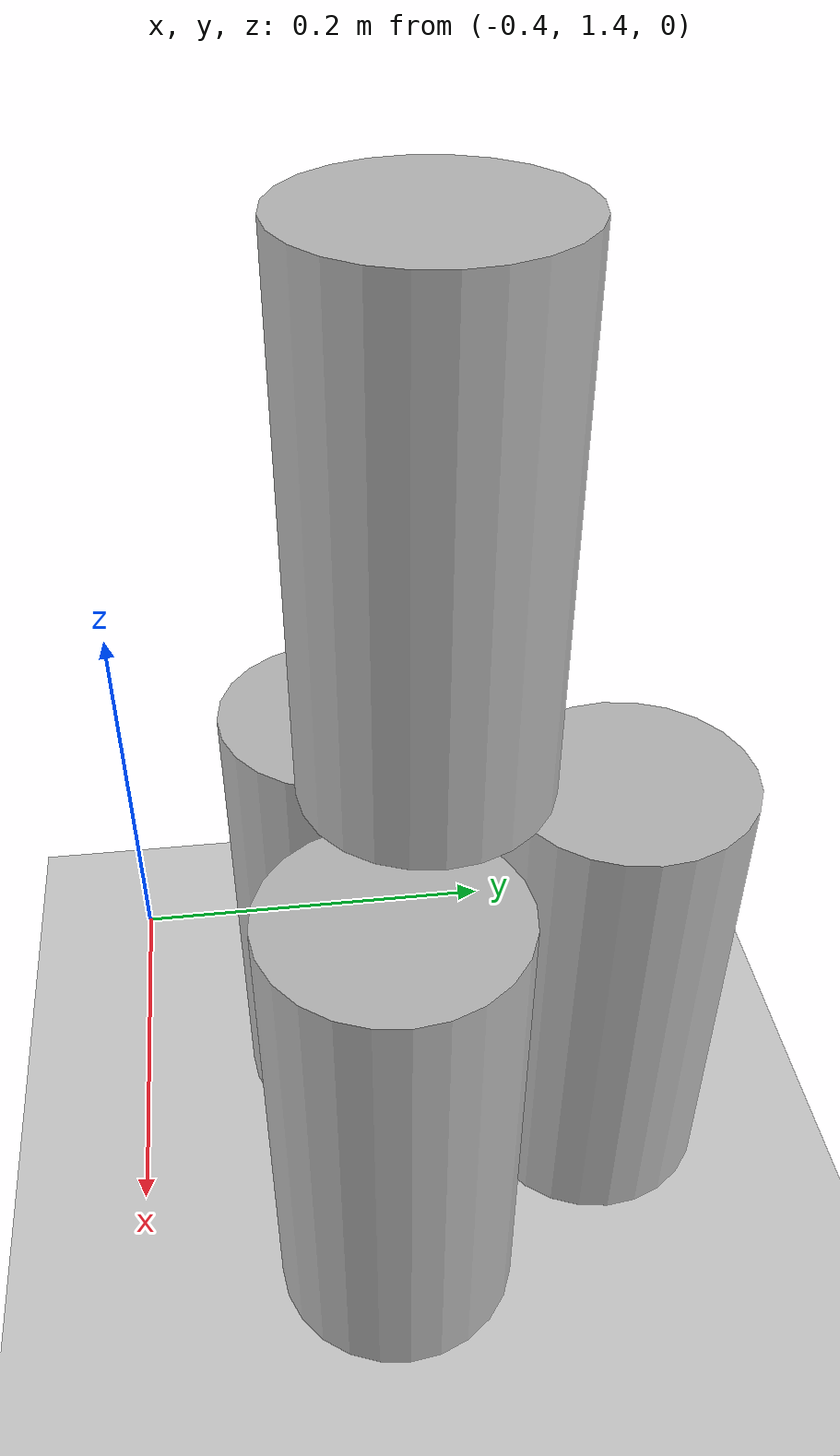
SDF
<sdf version="1.6">
 <world name="default">
  <light name="sun" type="directional">
   <pose>0 0 10 0 -0 0</pose>
   <diffuse>0.8 0.8 0.8 1</diffuse>
   <specular>0.2 0.2 0.2 1</specular>
   <attenuation>
    <range>1000</range>
    <constant>0.9</constant>
    <linear>0.01</linear>
    <quadratic>0.001</quadratic>
   </attenuation>
   <direction>-0.5 0.1 -0.9</direction>
  </light>
  <model name="ground_plane">
   <static>1</static>
   <link name="link">
    <collision name="collision">
     <geometry><plane><normal>0 0 1</normal><size>100 100</size></plane></geometry>
     <surface>
      <contact><collide_bitmask>65535</collide_bitmask></contact>
      <friction><ode><mu>100</mu><mu2>50</mu2></ode></friction>
     </surface>
    </collision>
    <visual name="visual">
     <cast_shadows>0</cast_shadows>
     <geometry><plane><normal>0 0 1</normal><size>100 100</size></plane></geometry>
     <material>
      <script><uri>file://media/materials/scripts/gazebo.material</uri><name>Gazebo/Grey</name></script>
     </material>
    </visual>
   </link>
  </model>
  <gravity>0 0 -9.8</gravity>
  <magnetic_field>6e-06 2.3e-05 -4.2e-05</magnetic_field>
  <atmosphere type="adiabatic"/>
  <physics name="default_physics" default="0" type="ode">
   <max_step_size>0.001</max_step_size>
   <real_time_factor>1</real_time_factor>
   <real_time_update_rate>1000</real_time_update_rate>
  </physics>
  <scene><ambient>0.4 0.4 0.4 1</ambient><background>0.7 0.7 0.7 1</background><shadows>1</shadows></scene>
  <audio><device>default</device></audio>
  <spherical_coordinates>
   <surface_model>EARTH_WGS84</surface_model>
   <latitude_deg>0</latitude_deg>
   <longitude_deg>0</longitude_deg>
   <elevation>0</elevation>
   <heading_deg>0</heading_deg>
  </spherical_coordinates>
  <model name="beer">
   <link name="link">
    <pose>0 0 0.115 0 -0 0</pose>
    <inertial>
     <mass>0.39</mass>
     <inertia><ixx>0.00058</ixx><ixy>0</ixy><ixz>0</ixz><iyy>0.00058</iyy><iyz>0</iyz><izz>0.00019</izz></inertia>
    </inertial>
    <collision name="collision">
     <geometry><cylinder><radius>0.055</radius><length>0.23</length></cylinder></geometry>
    </collision>
    <visual name="visual">
     <geometry><cylinder><radius>0.055</radius><length>0.23</length></cylinder></geometry>
     <material>
      <script>
       <uri>model://beer/materials/scripts</uri>
       <uri>model://beer/materials/textures</uri>
       <name>Beer/Diffuse</name>
      </script>
     </material>
    </visual>
   </link>
   <pose>-0.221468 1.6296 -1e-06 -1.6e-05 -7e-06 -0.008814</pose>
  </model>
  <model name="beer_0">
   <link name="link">
    <pose>0 0 0.115 0 -0 0</pose>
    <inertial>
     <mass>0.39</mass>
     <inertia><ixx>0.00058</ixx><ixy>0</ixy><ixz>0</ixz><iyy>0.00058</iyy><iyz>0</iyz><izz>0.00019</izz></inertia>
    </inertial>
    <collision name="collision">
     <geometry><cylinder><radius>0.055</radius><length>0.23</length></cylinder></geometry>
    </collision>
    <visual name="visual">
     <geometry><cylinder><radius>0.055</radius><length>0.23</length></cylinder></geometry>
     <material>
      <script>
       <uri>model://beer/materials/scripts</uri>
       <uri>model://beer/materials/textures</uri>
       <name>Beer/Diffuse</name>
      </script>
     </material>
    </visual>
   </link>
   <pose>-0.150808 1.52067 0 0 2e-06 0.007034</pose>
  </model>
  <model name="beer_1">
   <link name="link">
    <pose>0 0 0.115 0 -0 0</pose>
    <inertial>
     <mass>0.39</mass>
     <inertia><ixx>0.00058</ixx><ixy>0</ixy><ixz>0</ixz><iyy>0.00058</iyy><iyz>0</iyz><izz>0.00019</izz></inertia>
    </inertial>
    <collision name="collision">
     <geometry><cylinder><radius>0.055</radius><length>0.23</length></cylinder></geometry>
    </collision>
    <visual name="visual">
     <geometry><cylinder><radius>0.055</radius><length>0.23</length></cylinder></geometry>
     <material>
      <script>
       <uri>model://beer/materials/scripts</uri>
       <uri>model://beer/materials/textures</uri>
       <name>Beer/Diffuse</name>
      </script>
     </material>
    </visual>
   </link>
   <pose>-0.284348 1.51272 -1e-06 1.9e-05 8e-06 -0.002144</pose>
  </model>
  <model name="beer_2">
   <link name="link">
    <pose>0 0 0.115 0 -0 0</pose>
    <inertial>
     <mass>0.39</mass>
     <inertia><ixx>0.00058</ixx><ixy>0</ixy><ixz>0</ixz><iyy>0.00058</iyy><iyz>0</iyz><izz>0.00019</izz></inertia>
    </inertial>
    <collision name="collision">
     <geometry><cylinder><radius>0.055</radius><length>0.23</length></cylinder></geometry>
    </collision>
    <visual name="visual">
     <geometry><cylinder><radius>0.055</radius><length>0.23</length></cylinder></geometry>
     <material>
      <script>
       <uri>model://beer/materials/scripts</uri>
       <uri>model://beer/materials/textures</uri>
       <name>Beer/Diffuse</name>
      </script>
     </material>
    </visual>
   </link>
   <pose>-0.230195 1.54389 0.230005 8.8e-05 -6.5e-05 0.012292</pose>
  </model>
 </world>
</sdf>
